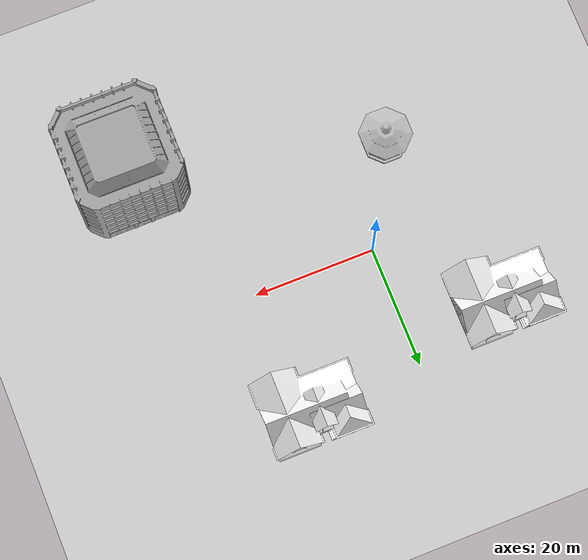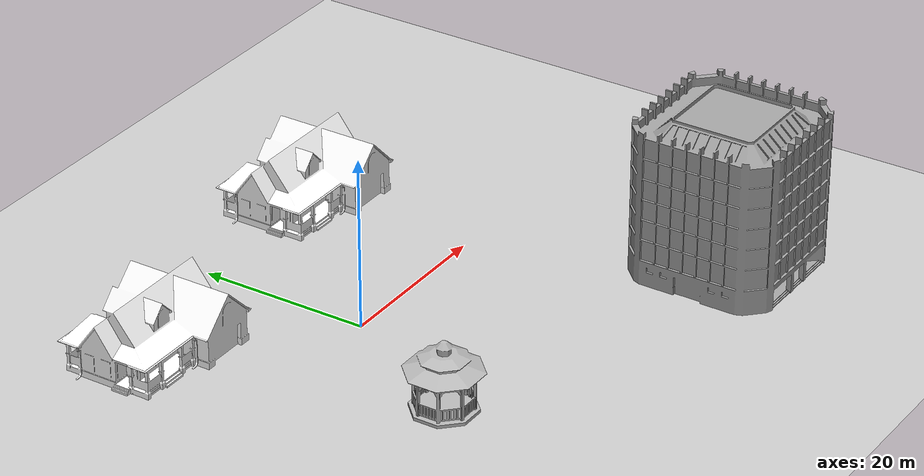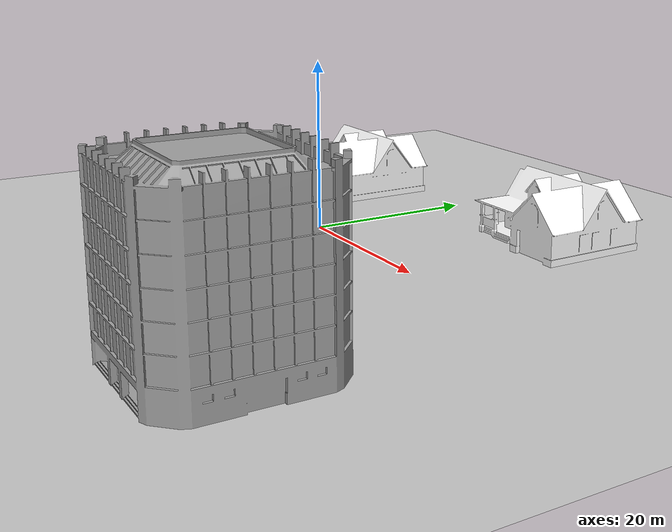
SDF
<sdf version="1.6">
 <world name="default">
  <light name="sun" type="directional">
   <pose>0 0 10 0 -0 0</pose>
   <diffuse>0.8 0.8 0.8 1</diffuse>
   <specular>0.2 0.2 0.2 1</specular>
   <attenuation>
    <range>1000</range>
    <constant>0.9</constant>
    <linear>0.01</linear>
    <quadratic>0.001</quadratic>
   </attenuation>
   <direction>-0.5 0.1 -0.9</direction>
  </light>
  <model name="ground_plane">
   <static>1</static>
   <link name="link">
    <collision name="collision">
     <geometry><plane><normal>0 0 1</normal><size>100 100</size></plane></geometry>
     <surface><friction><ode><mu>100</mu><mu2>50</mu2></ode></friction></surface>
    </collision>
    <visual name="visual">
     <cast_shadows>0</cast_shadows>
     <geometry><plane><normal>0 0 1</normal><size>100 100</size></plane></geometry>
     <material>
      <script><uri>file://media/materials/scripts/gazebo.material</uri><name>Gazebo/Grey</name></script>
     </material>
    </visual>
   </link>
  </model>
  <gravity>0 0 -9.8</gravity>
  <magnetic_field>6e-06 2.3e-05 -4.2e-05</magnetic_field>
  <atmosphere type="adiabatic"/>
  <physics name="default_physics" default="0" type="ode">
   <max_step_size>0.001</max_step_size>
   <real_time_factor>1</real_time_factor>
   <real_time_update_rate>1000</real_time_update_rate>
  </physics>
  <scene><ambient>0.4 0.4 0.4 1</ambient><background>0.7 0.7 0.7 1</background><shadows>1</shadows></scene>
  <spherical_coordinates>
   <surface_model>EARTH_WGS84</surface_model>
   <latitude_deg>0</latitude_deg>
   <longitude_deg>0</longitude_deg>
   <elevation>0</elevation>
   <heading_deg>0</heading_deg>
  </spherical_coordinates>
  <model name="House 1">
   <static>1</static>
   <link name="link">
    <collision name="collision">
     <geometry><mesh><uri>model://house_1/meshes/house_1.dae</uri><scale>1.5 1.5 1.5</scale></mesh></geometry>
    </collision>
    <visual name="visual">
     <geometry><mesh><uri>model://house_1/meshes/house_1.dae</uri><scale>1.5 1.5 1.5</scale></mesh></geometry>
     <material>
      <script>
       <uri>model://house_1/materials/scripts</uri>
       <uri>model://house_1/materials/textures</uri>
       <name>House_1/Diffuse</name>
      </script>
      <shader type="normal_map_tangent_space"><normal_map>House_1_Normal.png</normal_map></shader>
     </material>
    </visual>
   </link>
   <pose>18.8207 20.4611 0 0 -0 0</pose>
  </model>
  <model name="gazebo">
   <static>1</static>
   <link name="link">
    <collision name="collision">
     <geometry><mesh><scale>3 3 2.5</scale><uri>model://gazebo/meshes/gazebo.dae</uri></mesh></geometry>
    </collision>
    <visual name="visual">
     <geometry><mesh><scale>3 3 2.5</scale><uri>model://gazebo/meshes/gazebo.dae</uri></mesh></geometry>
    </visual>
   </link>
   <pose>-8.56955 -16.0553 0 0 -0 0</pose>
  </model>
  <model name="Office Building">
   <static>1</static>
   <link name="link">
    <collision name="collision">
     <geometry><mesh><uri>model://office_building/meshes/office_building.dae</uri></mesh></geometry>
    </collision>
    <visual name="visual">
     <geometry><mesh><uri>model://office_building/meshes/office_building.dae</uri></mesh></geometry>
    </visual>
   </link>
   <pose>32.2788 -26.0858 0 0 -0 0</pose>
  </model>
  <model name="House 1_clone">
   <static>1</static>
   <link name="link">
    <collision name="collision">
     <geometry><mesh><uri>model://house_1/meshes/house_1.dae</uri><scale>1.5 1.5 1.5</scale></mesh></geometry>
    </collision>
    <visual name="visual">
     <geometry><mesh><uri>model://house_1/meshes/house_1.dae</uri><scale>1.5 1.5 1.5</scale></mesh></geometry>
     <material>
      <script>
       <uri>model://house_1/materials/scripts</uri>
       <uri>model://house_1/materials/textures</uri>
       <name>House_1/Diffuse</name>
      </script>
      <shader type="normal_map_tangent_space"><normal_map>House_1_Normal.png</normal_map></shader>
     </material>
    </visual>
   </link>
   <pose>-15.9118 15.0568 0 0 -0 0</pose>
  </model>
 </world>
</sdf>
